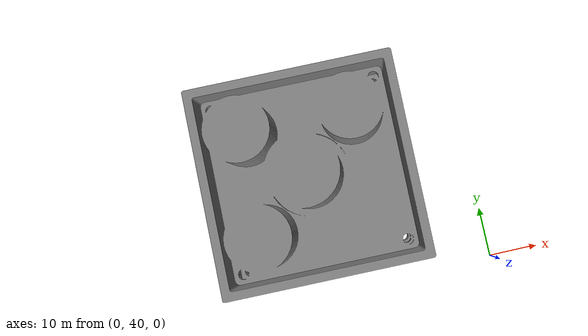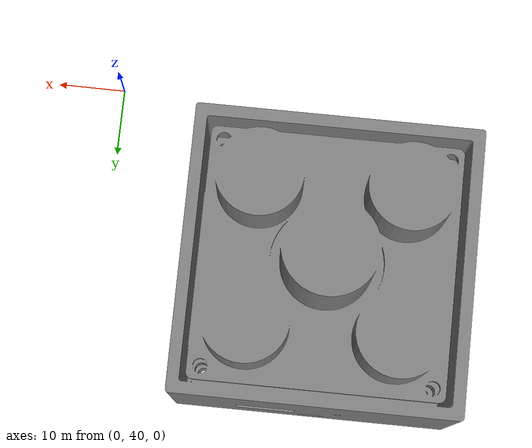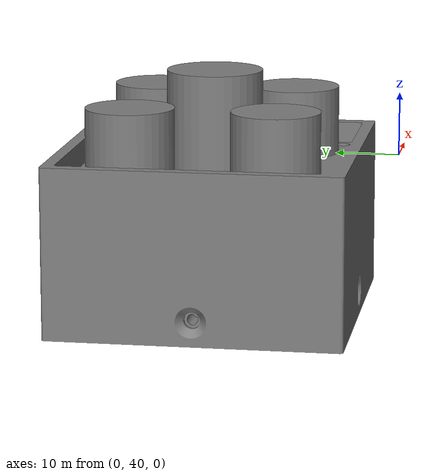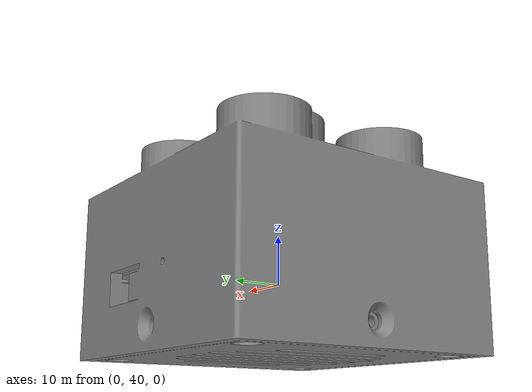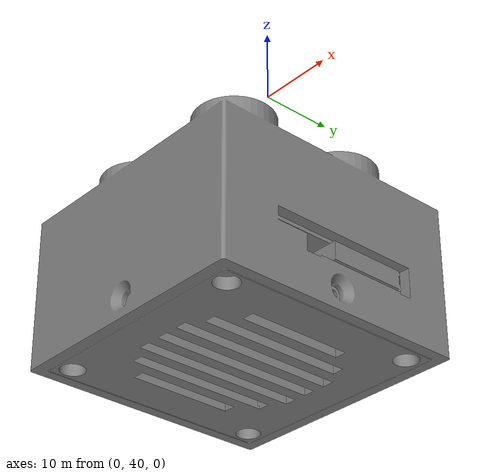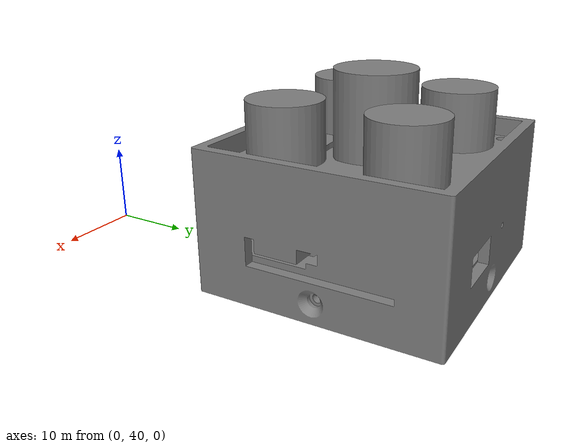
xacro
<?xml version="1.0"?>
<robot name="pointcloud_camera" xmlns:xacro="http://ros.org/wiki/xacro">
  <xacro:include filename="$(find pointcloud_camera)/urdf/deptheye520.urdf.xacro"/>

  <link name="base_link" />
  <sensor_deptheye520 parent="base_link">
    <origin xyz="0 0 0" rpy="0 0 0"/>
  </sensor_deptheye520>
</robot>

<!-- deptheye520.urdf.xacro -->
<!--
License: Apache 2.0. See LICENSE file in root directory.
Copyright(c) 2017 PointCloud Corporation. All Rights Reserved
-->

<robot name="sensor_deptheye520" xmlns:xacro="http://ros.org/wiki/xacro">
  <xacro:macro name="sensor_deptheye520" params="parent *origin">
    <xacro:property name="M_PI" value="3.1415926535897931" />

    <!-- The following values are approximate, and the camera node
     publishing TF values with actual calibrated camera extrinsic values -->
    <xacro:property name="d520_cam_depth_to_left_ir_offset" value="0.0"/>
    <xacro:property name="d520_cam_depth_to_right_ir_offset" value="-0.055"/>
    <xacro:property name="d520_cam_depth_to_color_offset" value="0.015"/>

    <xacro:property name="d520_cam_width" value="0.099"/>
    <xacro:property name="d520_cam_height" value="0.023"/>
    <xacro:property name="d520_cam_depth" value="0.02005"/>
    <xacro:property name="d520_cam_mount_from_center_offset" value="0.00987"/>

    <xacro:property name="d520_cam_depth_px" value="${d520_cam_mount_from_center_offset}"/>
    <xacro:property name="d520_cam_depth_py" value="0.020"/>
    <xacro:property name="d520_cam_depth_pz" value="${d520_cam_height/2}"/>

    <material name="aluminum">
	     <color rgba="0.5 0.5 0.5 1"/>
    </material>

    <!-- camera body, with origin at bottom screw mount -->
    <joint name="camera_joint" type="fixed">
      <xacro:insert_block name="origin" />
      <parent link="${parent}"/>
      <child link="camera_bottom_screw_frame" />
    </joint>

    <link name="camera_bottom_screw_frame"/>

    <joint name="camera_link_joint" type="fixed">
      <origin xyz="0 ${d520_cam_depth_py} ${d520_cam_depth_pz}" rpy="0 0 0"/>
      <parent link="camera_bottom_screw_frame"/>
      <child link="camera_link" />
    </joint>

    <link name="camera_link">
      <visual>
      <origin xyz="${d520_cam_mount_from_center_offset} ${-d520_cam_depth_py} 0" rpy="${M_PI/2} 0 ${M_PI/2}"/>
        <geometry>
	         <mesh filename="package://pointcloud_camera/meshes/deptheye520.stl" />
        </geometry>
        <material name="aluminum"/>
      </visual>
      <collision>
        <origin xyz="0 ${-d520_cam_depth_py} 0" rpy="0 0 0"/>
        <geometry>
        <box size="${d520_cam_depth} ${d520_cam_width} ${d520_cam_height}"/>
        </geometry>
      </collision>
      <inertial>
        <!-- The following are not reliable values, and should not be used for modeling -->
        <mass value="0.564" />
        <origin xyz="0 0 0" />
        <inertia ixx="0.003881243" ixy="0.0" ixz="0.0" iyy="0.000498940" iyz="0.0" izz="0.003879257" />
      </inertial>
    </link>

    <!-- camera depth joints and links -->
    <joint name="camera_depth_joint" type="fixed">
      <origin xyz="0 0 0" rpy="0 0 0"/>
      <parent link="camera_link"/>
      <child link="camera_depth_frame" />
    </joint>
    <link name="camera_depth_frame"/>

  </xacro:macro>
</robot>
